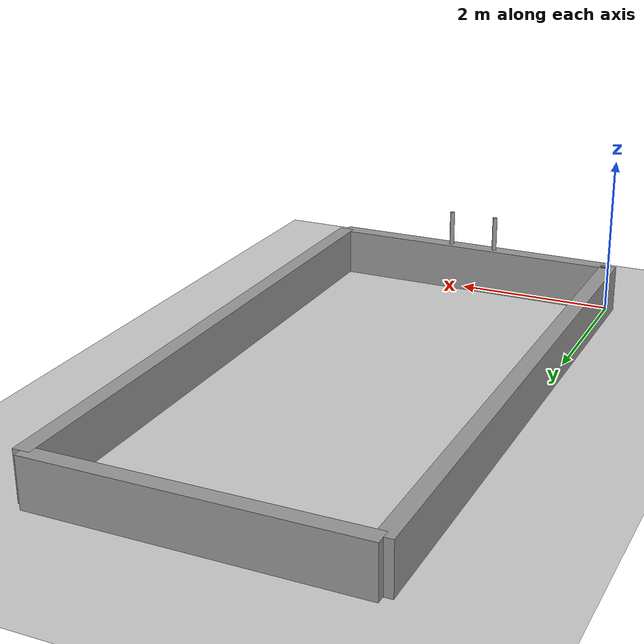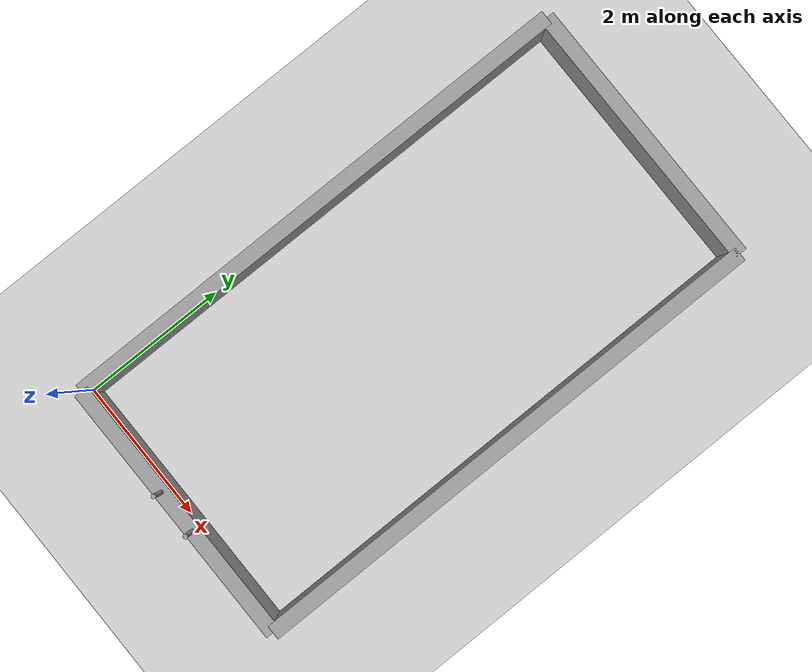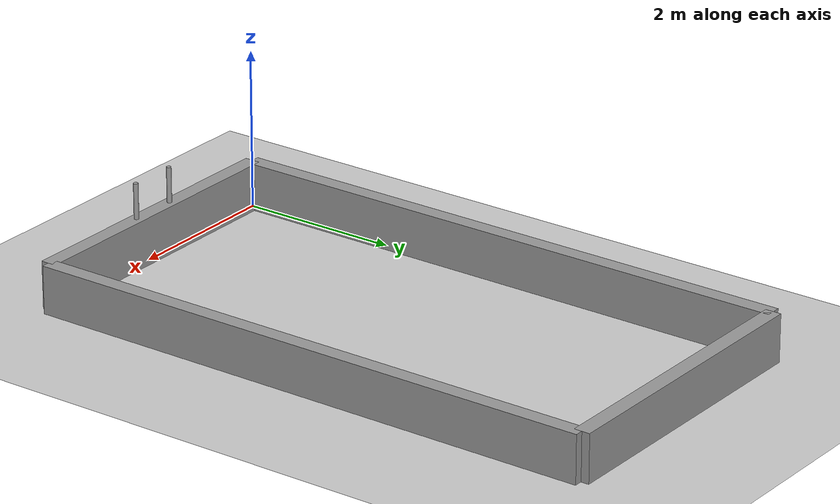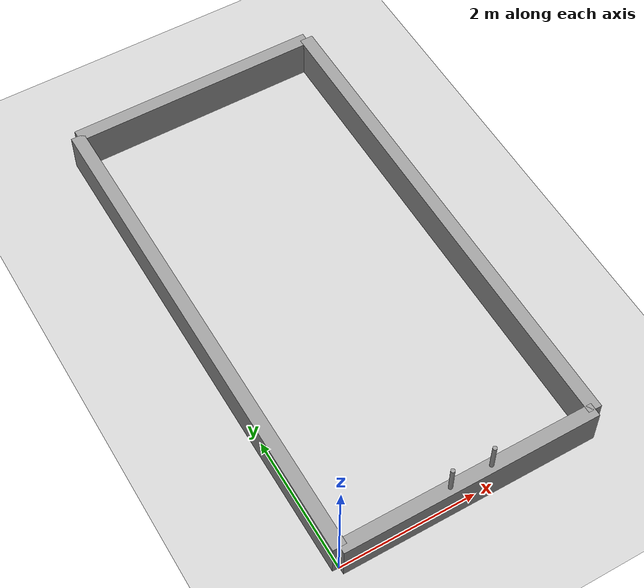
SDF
<?xml version="1.0" ?>
<sdf version="1.4">

  <world name="default">
    <include>
      <uri>model://ground_plane</uri>
    </include>

    <!-- Global light source -->
    <include>
      <uri>model://sun</uri>
    </include>

    <!-- RMC field -->

    <model name='RMCField'>
      <link name='Wall_5'>
        <collision name='Wall_5_Collision'>
          <geometry>
            <box>
              <size>7.38 0.2 0.6</size>
            </box>
          </geometry>
          <pose>0 0 0.3 0 -0 0</pose>
        </collision>
        <visual name='Wall_5_Visual'>
          <pose>0 0 0.3 0 -0 0</pose>
          <geometry>
            <box>
              <size>7.38 0.2 0.6</size>
            </box>
          </geometry>
          <material>
            <script>
              <uri>file://media/materials/scripts/gazebo.material</uri>
              <name>Gazebo/Grey</name>
            </script>
          </material>
        </visual>
        <pose>-1.89 3.69 0 0 0 1.57079632679</pose>
      </link>
      <link name='Wall_6'>
        <collision name='Wall_6_Collision'>
          <geometry>
            <box>
              <size>3.78 0.2 0.6</size>
            </box>
          </geometry>
          <pose>0 0 0.3 0 -0 0</pose>
        </collision>
        <visual name='Wall_6_Visual'>
          <pose>0 0 0.3 0 -0 0</pose>
          <geometry>
            <box>
              <size>3.78 0.2 0.6</size>
            </box>
          </geometry>
          <material>
            <script>
              <uri>file://media/materials/scripts/gazebo.material</uri>
              <name>Gazebo/Grey</name>
            </script>
          </material>
        </visual>
        <pose>0 0 0 0 0 0</pose>
      </link>
      <link name='Wall_7'>
        <collision name='Wall_7_Collision'>
          <geometry>
            <box>
              <size>7.38 0.2 0.6</size>
            </box>
          </geometry>
          <pose>0 0 0.3 0 -0 0</pose>
        </collision>
        <visual name='Wall_7_Visual'>
          <pose>0 0 0.3 0 -0 0</pose>
          <geometry>
            <box>
              <size>7.38 0.2 0.6</size>
            </box>
          </geometry>
          <material>
            <script>
              <uri>file://media/materials/scripts/gazebo.material</uri>
              <name>Gazebo/Grey</name>
            </script>
          </material>
        </visual>
        <pose>1.89 3.69 0 0 0 1.57079632679</pose>
      </link>
      <link name='Wall_8'>
        <collision name='Wall_8_Collision'>
          <geometry>
            <box>
              <size>3.78001 0.2 0.6</size>
            </box>
          </geometry>
          <pose>0 0 0.3 0 -0 0</pose>
        </collision>
        <visual name='Wall_8_Visual'>
          <pose>0 0 0.3 0 -0 0</pose>
          <geometry>
            <box>
              <size>3.78001 0.2 0.6</size>
            </box>
          </geometry>
          <material>
            <script>
              <uri>file://media/materials/scripts/gazebo.material</uri>
              <name>Gazebo/Grey</name>
            </script>
          </material>
        </visual>
        <pose>0 7.38 0 0 0 0</pose>
      </link>
      <static>1</static>
      <pose>1.89 0 0 0 0 0</pose>
    </model>

<model name='leftBeacoPost'>
      <pose>2.1948 0 0.8 0 -0 0</pose>
      <link name='link'>
        <collision name='collision'>
          <geometry>
            <cylinder>
              <radius>0.03</radius>
              <length>0.5</length>
            </cylinder>
          </geometry>
        </collision>
        <visual name='visual'>
          <geometry>
            <cylinder>
              <radius>0.03</radius>
              <length>0.5</length>
            </cylinder>
          </geometry>
          <material>
            <script>
              <uri>file://media/materials/scripts/gazebo.material</uri>
              <name>Gazebo/Grey</name>
            </script>
          </material>
        </visual>
      </link>
      <static>1</static>
    </model>
<model name='rightBeacoPost'>
      <pose>1.5852 0 0.8 0 -0 0</pose>
      <link name='link'>
        <collision name='collision'>
          <geometry>
            <cylinder>
              <radius>0.03</radius>
              <length>0.5</length>
            </cylinder>
          </geometry>
        </collision>
        <visual name='visual'>
          <geometry>
            <cylinder>
              <radius>0.03</radius>
              <length>0.5</length>
            </cylinder>
          </geometry>
          <material>
            <script>
              <uri>file://media/materials/scripts/gazebo.material</uri>
              <name>Gazebo/Grey</name>
            </script>
          </material>
        </visual>
      </link>
      <static>1</static>
    </model>

    <!-- Focus camera on the field-->
<gui>
      <camera name='user_camera'>
        <pose>1.89 -2.7 4.5 0 0.67 1.57079632679</pose>
        <view_controller>orbit</view_controller>
      </camera>
    </gui>

  </world>
</sdf>
